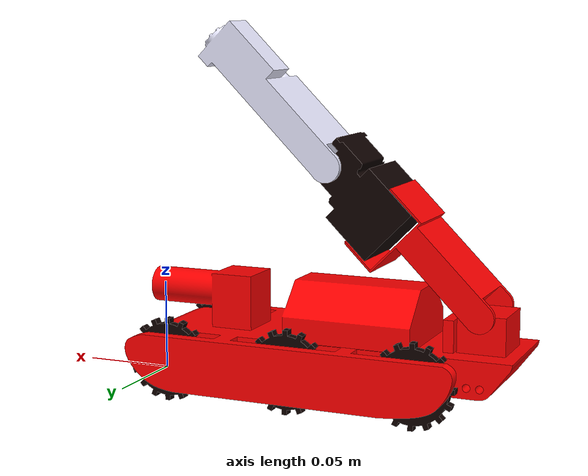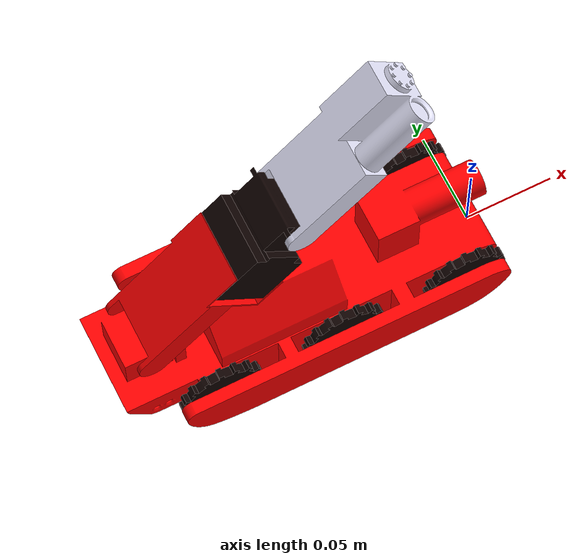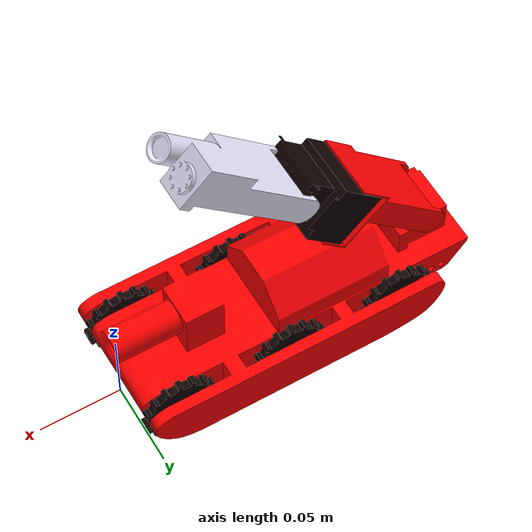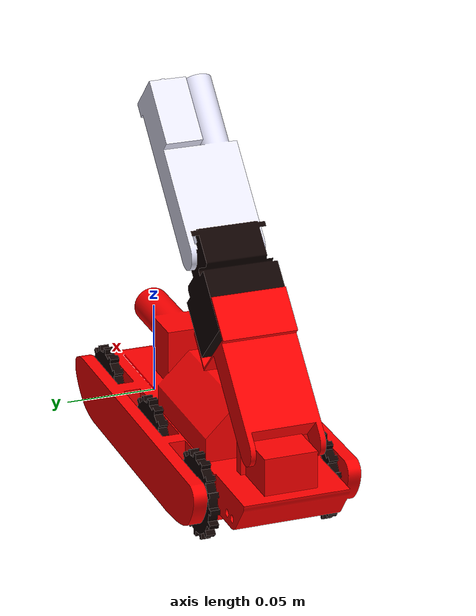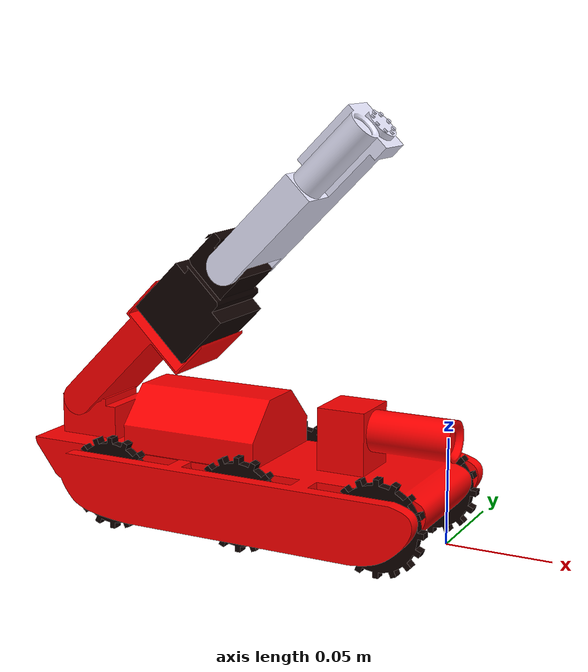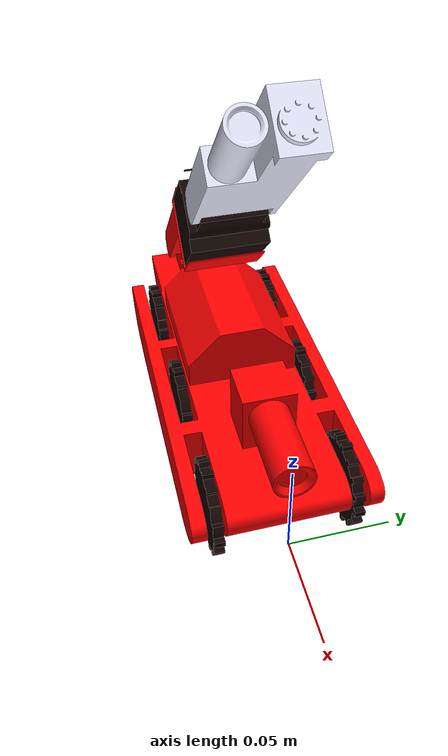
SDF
<sdf version='1.9'>
  <model name='scorpion'>
    <link name='base_link'>
      <inertial>
        <pose>-0.08999998419427797 5.333881995895085e-05 0 0 0 0</pose>
        <mass>4</mass>
        <inertia>
          <ixx>0.01019999876502858</ixx>
          <ixy>4.8004910330498377e-06</ixy>
          <ixz>0</ixz>
          <iyy>0.018299989834971431</iyy>
          <iyz>0</iyz>
          <izz>0.013499994600000001</izz>
        </inertia>
      </inertial>
      <collision name='base_link_fixed_joint_lump__chassis_link_collision'>
        <pose>-0.08999998419427796 5.333881995895085e-05 0.03 0 0 3.141</pose>
        <geometry>
          <box>
            <size>0.18 0.09 0.03</size>
          </box>
        </geometry>
      </collision>
      <visual name='base_link_fixed_joint_lump__chassis_link_visual'>
        <pose>0 0 0 0 0 3.141</pose>
        <geometry>
          <mesh>
            <scale>1 1 1</scale>
            <uri>file:///workspace/install/scorpion/share/scorpion/worlds_and_models/scorpion/meshes/Unnamed_chassis_body.dae</uri>
          </mesh>
        </geometry>
        <material>
          <diffuse>1 0 0 1</diffuse>
          <ambient>1 0 0 1</ambient>
        </material>
      </visual>
      <sensor name='realsense_d435' type='rgbd_camera'>
        <topic>realsense</topic>
        <update_rate>5</update_rate>
        <camera name='depth_camera'>
          <horizontal_fov>1.3999999999999999</horizontal_fov>
          <image>
            <width>640</width>
            <height>480</height>
            <format>R8G8B8</format>
          </image>
          <clip>
            <near>0.01</near>
            <far>5</far>
          </clip>
          <depth_camera>
            <clip>
              <near>0.10000000000000001</near>
              <far>5</far>
            </clip>
            <output>depths</output>
          </depth_camera>
          <noise>
            <type>gaussian</type>
            <mean>0</mean>
            <stddev>0.0070000000000000001</stddev>
          </noise>
        </camera>
        <pose>0 0 0.1 0 -0 -0.00118531</pose>
        <ignition_frame_id>chassis_camera_optical_link</ignition_frame_id>
      </sensor>
    </link>
    <joint name='joint_1' type='revolute'>
      <pose relative_to='base_link'>-0.1899999666323646 0.0001126041754688962 0.05 3.833233541708435e-20 0.7853981633974482 3.141</pose>
      <parent>base_link</parent>
      <child>tail_link1</child>
      <axis>
        <xyz>0 -1 0</xyz>
        <limit>
          <lower>-3.1415926535897931</lower>
          <upper>3.1400000000000001</upper>
          <effort>10</effort>
          <velocity>10</velocity>
        </limit>
        <dynamics>
          <spring_reference>0</spring_reference>
          <spring_stiffness>0</spring_stiffness>
        </dynamics>
      </axis>
    </joint>
    <link name='tail_link1'>
      <pose relative_to='joint_1'>0 0 0 0 0 0</pose>
      <inertial>
        <pose>-0.04 0 0 0 0 0</pose>
        <mass>0.80000000000000004</mass>
        <inertia>
          <ixx>0.00012166661799999999</ixx>
          <ixy>0</ixy>
          <ixz>0</ixz>
          <iyy>0.00049666646800000007</iyy>
          <iyz>0</iyz>
          <izz>0.00058833309800000006</izz>
        </inertia>
      </inertial>
      <collision name='tail_link1_collision'>
        <pose>-0.042 0 0 0 0 0</pose>
        <geometry>
          <box>
            <size>0.085 0.04 0.015</size>
          </box>
        </geometry>
      </collision>
      <visual name='tail_link1_visual'>
        <pose>0 0 0 0 0 0</pose>
        <geometry>
          <mesh>
            <scale>1 1 1</scale>
            <uri>file:///workspace/install/scorpion/share/scorpion/worlds_and_models/scorpion/meshes/Unnamed_tail1_body.dae</uri>
          </mesh>
        </geometry>
        <material>
          <diffuse>1 0 0 1</diffuse>
          <ambient>1 0 0 1</ambient>
        </material>
      </visual>
    </link>
    <joint name='joint_2' type='revolute'>
      <pose relative_to='tail_link1'>-0.065 0 -0.008 0 0 0</pose>
      <parent>tail_link1</parent>
      <child>tail_link2</child>
      <axis>
        <xyz>0 0 1</xyz>
        <limit>
          <lower>-1.570796326794897</lower>
          <upper>1.570796326794897</upper>
          <effort>10</effort>
          <velocity>1</velocity>
        </limit>
        <dynamics>
          <spring_reference>0</spring_reference>
          <spring_stiffness>0</spring_stiffness>
        </dynamics>
      </axis>
    </joint>
    <link name='tail_link2'>
      <pose relative_to='joint_2'>0 0 0 0 0 0</pose>
      <inertial>
        <pose>-0.025 0 0 0 0 0</pose>
        <mass>0.20000000000000001</mass>
        <inertia>
          <ixx>4.8749980500000002e-05</ixx>
          <ixy>0</ixy>
          <ixz>0</ixz>
          <iyy>7.5416636500000002e-05</iyy>
          <iyz>0</iyz>
          <izz>5.6666643999999998e-05</izz>
        </inertia>
      </inertial>
      <collision name='tail_link2_collision'>
        <pose>-0.025 0 0 0 0 0</pose>
        <geometry>
          <box>
            <size>0.05 0.03 0.04</size>
          </box>
        </geometry>
      </collision>
      <visual name='tail_link2_visual'>
        <pose>0 0 0 0 0 0</pose>
        <geometry>
          <mesh>
            <scale>1 1 1</scale>
            <uri>file:///workspace/install/scorpion/share/scorpion/worlds_and_models/scorpion/meshes/Unnamed_tail2_body.dae</uri>
          </mesh>
        </geometry>
        <material>
          <diffuse>0.05375 0.005 0 1</diffuse>
          <ambient>0.05375 0.005 0 1</ambient>
        </material>
      </visual>
    </link>
    <joint name='joint_3' type='revolute'>
      <pose relative_to='tail_link2'>-0.046 0 0 0 0 0</pose>
      <parent>tail_link2</parent>
      <child>tail_link3</child>
      <axis>
        <xyz>0 -1 0</xyz>
        <limit>
          <lower>-1.570796326794897</lower>
          <upper>1.570796326794897</upper>
          <effort>10</effort>
          <velocity>1</velocity>
        </limit>
        <dynamics>
          <spring_reference>0</spring_reference>
          <spring_stiffness>0</spring_stiffness>
        </dynamics>
      </axis>
    </joint>
    <link name='tail_link3'>
      <pose relative_to='joint_3'>0 0 0 0 0 0</pose>
      <inertial>
        <pose>-0.05 0 0 0 0 0</pose>
        <mass>0.40000000000000002</mass>
        <inertia>
          <ixx>0.00011803328612000001</ixx>
          <ixy>0</ixy>
          <ixz>0</ixz>
          <iyy>0.00043053316112000008</iyy>
          <iyz>0</iyz>
          <izz>0.00035416652500000012</izz>
        </inertia>
      </inertial>
      <collision name='tail_link3_collision'>
        <pose>-0.05 0 0 1.57 0 0</pose>
        <geometry>
          <box>
            <size>0.1 0.025 0.054</size>
          </box>
        </geometry>
      </collision>
      <visual name='tail_link3_visual'>
        <pose>0 0 0 0 0 0</pose>
        <geometry>
          <mesh>
            <scale>1 1 1</scale>
            <uri>file:///workspace/install/scorpion/share/scorpion/worlds_and_models/scorpion/meshes/Unnamed_tail3_body.dae</uri>
          </mesh>
        </geometry>
        <material>
          <diffuse>0.9125 0.9125 1 1</diffuse>
          <ambient>0.9125 0.9125 1 1</ambient>
        </material>
      </visual>
      <sensor name='tailcamera' type='camera'>
        <topic>tail_camera</topic>
        <update_rate>5</update_rate>
        <camera>
          <horizontal_fov>1.0469999999999999</horizontal_fov>
          <image>
            <width>320</width>
            <height>240</height>
          </image>
          <clip>
            <near>0.10000000000000001</near>
            <far>20</far>
          </clip>
        </camera>
        <always_on>true</always_on>
        <update_rate>5</update_rate>
        <visualize>true</visualize>
        <pose>-0.25 0 0 0 -0 3.141</pose>
        <ignition_frame_id>tail_camera_link</ignition_frame_id>
      </sensor>
    </link>
    <joint name='left_wheel_joint_1' type='revolute'>
      <pose relative_to='base_link'>-0.01998043892029905 0.03301184727567059 0.015 0 0 3.141</pose>
      <parent>base_link</parent>
      <child>left_wheel_1</child>
      <axis>
        <xyz>0 -1 0</xyz>
        <limit>
          <effort>10</effort>
          <velocity>1</velocity>
          <lower>-10000000000000000</lower>
          <upper>10000000000000000</upper>
        </limit>
        <dynamics>
          <spring_reference>0</spring_reference>
          <spring_stiffness>0</spring_stiffness>
        </dynamics>
      </axis>
    </joint>
    <link name='left_wheel_1'>
      <pose relative_to='left_wheel_joint_1'>0 0 0 0 0 0</pose>
      <inertial>
        <pose>0 0 0 1.57 0 0</pose>
        <mass>0.00050000000000000001</mass>
        <inertia>
          <ixx>1.354166125e-08</ixx>
          <ixy>0</ixy>
          <ixz>0</ixz>
          <iyy>1.354166125e-08</iyy>
          <iyz>0</iyz>
          <izz>2.4999999999999999e-08</izz>
        </inertia>
      </inertial>
      <collision name='left_wheel_1_collision'>
        <pose>0 0 0 1.57 0 0</pose>
        <geometry>
          <cylinder>
            <length>0.02</length>
            <radius>0.02</radius>
          </cylinder>
        </geometry>
        <surface>
          <friction>
            <ode>
              <mu>0.5</mu>
              <mu2>1</mu2>
              <fdir1>0 0 1</fdir1>
              <mu1>0.5</mu1>
            </ode>
          </friction>
          <contact>
            <ode/>
          </contact>
        </surface>
      </collision>
      <visual name='left_wheel_1_visual'>
        <pose>0 0 0 0 0 0</pose>
        <geometry>
          <mesh>
            <scale>1 1 1</scale>
            <uri>file:///workspace/install/scorpion/share/scorpion/worlds_and_models/scorpion/meshes/Unnamed_wheel_body.dae</uri>
          </mesh>
        </geometry>
        <material>
          <diffuse>0.05375 0.005 0 1</diffuse>
          <ambient>0.05375 0.005 0 1</ambient>
        </material>
      </visual>
    </link>
    <joint name='left_wheel_joint_2' type='revolute'>
      <pose relative_to='base_link'>-0.08998042662695968 0.03305333302452755 0.015 0 0 3.141</pose>
      <parent>base_link</parent>
      <child>left_wheel_2</child>
      <axis>
        <xyz>0 -1 0</xyz>
        <limit>
          <effort>10</effort>
          <velocity>1</velocity>
          <lower>-10000000000000000</lower>
          <upper>10000000000000000</upper>
        </limit>
        <dynamics>
          <spring_reference>0</spring_reference>
          <spring_stiffness>0</spring_stiffness>
        </dynamics>
      </axis>
    </joint>
    <link name='left_wheel_2'>
      <pose relative_to='left_wheel_joint_2'>0 0 0 0 0 0</pose>
      <inertial>
        <pose>0 0 0 1.57 0 0</pose>
        <mass>0.00050000000000000001</mass>
        <inertia>
          <ixx>1.354166125e-08</ixx>
          <ixy>0</ixy>
          <ixz>0</ixz>
          <iyy>1.354166125e-08</iyy>
          <iyz>0</iyz>
          <izz>2.4999999999999999e-08</izz>
        </inertia>
      </inertial>
      <collision name='left_wheel_2_collision'>
        <pose>0 0 0 1.57 0 0</pose>
        <geometry>
          <cylinder>
            <length>0.02</length>
            <radius>0.02</radius>
          </cylinder>
        </geometry>
        <surface>
          <friction>
            <ode>
              <mu>0.5</mu>
              <mu2>1</mu2>
              <fdir1>0 0 1</fdir1>
              <mu1>0.5</mu1>
            </ode>
          </friction>
          <contact>
            <ode/>
          </contact>
        </surface>
      </collision>
      <visual name='left_wheel_2_visual'>
        <pose>0 0 0 0 0 0</pose>
        <geometry>
          <mesh>
            <scale>1 1 1</scale>
            <uri>file:///workspace/install/scorpion/share/scorpion/worlds_and_models/scorpion/meshes/Unnamed_wheel_body.dae</uri>
          </mesh>
        </geometry>
        <material>
          <diffuse>0.05375 0.005 0 1</diffuse>
          <ambient>0.05375 0.005 0 1</ambient>
        </material>
      </visual>
    </link>
    <joint name='left_wheel_joint_3' type='revolute'>
      <pose relative_to='base_link'>-0.1599804143336204 0.03309481877338451 0.015 0 0 3.141</pose>
      <parent>base_link</parent>
      <child>left_wheel_3</child>
      <axis>
        <xyz>0 -1 0</xyz>
        <limit>
          <effort>10</effort>
          <velocity>1</velocity>
          <lower>-10000000000000000</lower>
          <upper>10000000000000000</upper>
        </limit>
        <dynamics>
          <spring_reference>0</spring_reference>
          <spring_stiffness>0</spring_stiffness>
        </dynamics>
      </axis>
    </joint>
    <link name='left_wheel_3'>
      <pose relative_to='left_wheel_joint_3'>0 0 0 0 0 0</pose>
      <inertial>
        <pose>0 0 0 1.57 0 0</pose>
        <mass>0.00050000000000000001</mass>
        <inertia>
          <ixx>1.354166125e-08</ixx>
          <ixy>0</ixy>
          <ixz>0</ixz>
          <iyy>1.354166125e-08</iyy>
          <iyz>0</iyz>
          <izz>2.4999999999999999e-08</izz>
        </inertia>
      </inertial>
      <collision name='left_wheel_3_collision'>
        <pose>0 0 0 1.57 0 0</pose>
        <geometry>
          <cylinder>
            <length>0.02</length>
            <radius>0.02</radius>
          </cylinder>
        </geometry>
        <surface>
          <friction>
            <ode>
              <mu>0.5</mu>
              <mu2>1</mu2>
              <fdir1>0 0 1</fdir1>
              <mu1>0.5</mu1>
            </ode>
          </friction>
          <contact>
            <ode/>
          </contact>
        </surface>
      </collision>
      <visual name='left_wheel_3_visual'>
        <pose>0 0 0 0 0 0</pose>
        <geometry>
          <mesh>
            <scale>1 1 1</scale>
            <uri>file:///workspace/install/scorpion/share/scorpion/worlds_and_models/scorpion/meshes/Unnamed_wheel_body.dae</uri>
          </mesh>
        </geometry>
        <material>
          <diffuse>0.05375 0.005 0 1</diffuse>
          <ambient>0.05375 0.005 0 1</ambient>
        </material>
      </visual>
    </link>
    <joint name='right_wheel_joint_1' type='revolute'>
      <pose relative_to='base_link'>-0.02001955405493561 -0.03298814113346661 0.015 0 0 3.141</pose>
      <parent>base_link</parent>
      <child>right_wheel_1</child>
      <axis>
        <xyz>0 -1 0</xyz>
        <limit>
          <effort>10</effort>
          <velocity>1</velocity>
          <lower>-10000000000000000</lower>
          <upper>10000000000000000</upper>
        </limit>
        <dynamics>
          <spring_reference>0</spring_reference>
          <spring_stiffness>0</spring_stiffness>
        </dynamics>
      </axis>
    </joint>
    <link name='right_wheel_1'>
      <pose relative_to='right_wheel_joint_1'>0 0 0 0 0 0</pose>
      <inertial>
        <pose>0 0 0 1.57 0 0</pose>
        <mass>0.00050000000000000001</mass>
        <inertia>
          <ixx>1.354166125e-08</ixx>
          <ixy>0</ixy>
          <ixz>0</ixz>
          <iyy>1.354166125e-08</iyy>
          <iyz>0</iyz>
          <izz>2.4999999999999999e-08</izz>
        </inertia>
      </inertial>
      <collision name='right_wheel_1_collision'>
        <pose>0 0 0 1.57 0 0</pose>
        <geometry>
          <cylinder>
            <length>0.02</length>
            <radius>0.02</radius>
          </cylinder>
        </geometry>
        <surface>
          <friction>
            <ode>
              <mu>0.5</mu>
              <mu2>1</mu2>
              <fdir1>0 0 1</fdir1>
              <mu1>0.5</mu1>
            </ode>
          </friction>
          <contact>
            <ode/>
          </contact>
        </surface>
      </collision>
      <visual name='right_wheel_1_visual'>
        <pose>0 0 0 0 0 0</pose>
        <geometry>
          <mesh>
            <scale>1 1 1</scale>
            <uri>file:///workspace/install/scorpion/share/scorpion/worlds_and_models/scorpion/meshes/Unnamed_wheel_body.dae</uri>
          </mesh>
        </geometry>
        <material>
          <diffuse>0.05375 0.005 0 1</diffuse>
          <ambient>0.05375 0.005 0 1</ambient>
        </material>
      </visual>
    </link>
    <joint name='right_wheel_joint_2' type='revolute'>
      <pose relative_to='base_link'>-0.09001954176159624 -0.03294665538460965 0.015 0 0 3.141</pose>
      <parent>base_link</parent>
      <child>right_wheel_2</child>
      <axis>
        <xyz>0 -1 0</xyz>
        <limit>
          <effort>10</effort>
          <velocity>1</velocity>
          <lower>-10000000000000000</lower>
          <upper>10000000000000000</upper>
        </limit>
        <dynamics>
          <spring_reference>0</spring_reference>
          <spring_stiffness>0</spring_stiffness>
        </dynamics>
      </axis>
    </joint>
    <link name='right_wheel_2'>
      <pose relative_to='right_wheel_joint_2'>0 0 0 0 0 0</pose>
      <inertial>
        <pose>0 0 0 1.57 0 0</pose>
        <mass>0.00050000000000000001</mass>
        <inertia>
          <ixx>1.354166125e-08</ixx>
          <ixy>0</ixy>
          <ixz>0</ixz>
          <iyy>1.354166125e-08</iyy>
          <iyz>0</iyz>
          <izz>2.4999999999999999e-08</izz>
        </inertia>
      </inertial>
      <collision name='right_wheel_2_collision'>
        <pose>0 0 0 1.57 0 0</pose>
        <geometry>
          <cylinder>
            <length>0.02</length>
            <radius>0.02</radius>
          </cylinder>
        </geometry>
        <surface>
          <friction>
            <ode>
              <mu>0.5</mu>
              <mu2>1</mu2>
              <fdir1>0 0 1</fdir1>
              <mu1>0.5</mu1>
            </ode>
          </friction>
          <contact>
            <ode/>
          </contact>
        </surface>
      </collision>
      <visual name='right_wheel_2_visual'>
        <pose>0 0 0 0 0 0</pose>
        <geometry>
          <mesh>
            <scale>1 1 1</scale>
            <uri>file:///workspace/install/scorpion/share/scorpion/worlds_and_models/scorpion/meshes/Unnamed_wheel_body.dae</uri>
          </mesh>
        </geometry>
        <material>
          <diffuse>0.05375 0.005 0 1</diffuse>
          <ambient>0.05375 0.005 0 1</ambient>
        </material>
      </visual>
    </link>
    <joint name='right_wheel_joint_3' type='revolute'>
      <pose relative_to='base_link'>-0.1600195294682569 -0.03290516963575269 0.015 0 0 3.141</pose>
      <parent>base_link</parent>
      <child>right_wheel_3</child>
      <axis>
        <xyz>0 -1 0</xyz>
        <limit>
          <effort>10</effort>
          <velocity>1</velocity>
          <lower>-10000000000000000</lower>
          <upper>10000000000000000</upper>
        </limit>
        <dynamics>
          <spring_reference>0</spring_reference>
          <spring_stiffness>0</spring_stiffness>
        </dynamics>
      </axis>
    </joint>
    <link name='right_wheel_3'>
      <pose relative_to='right_wheel_joint_3'>0 0 0 0 0 0</pose>
      <inertial>
        <pose>0 0 0 1.57 0 0</pose>
        <mass>0.00050000000000000001</mass>
        <inertia>
          <ixx>1.354166125e-08</ixx>
          <ixy>0</ixy>
          <ixz>0</ixz>
          <iyy>1.354166125e-08</iyy>
          <iyz>0</iyz>
          <izz>2.4999999999999999e-08</izz>
        </inertia>
      </inertial>
      <collision name='right_wheel_3_collision'>
        <pose>0 0 0 1.57 0 0</pose>
        <geometry>
          <cylinder>
            <length>0.02</length>
            <radius>0.02</radius>
          </cylinder>
        </geometry>
        <surface>
          <friction>
            <ode>
              <mu>0.5</mu>
              <mu2>1</mu2>
              <fdir1>0 0 1</fdir1>
              <mu1>0.5</mu1>
            </ode>
          </friction>
          <contact>
            <ode/>
          </contact>
        </surface>
      </collision>
      <visual name='right_wheel_3_visual'>
        <pose>0 0 0 0 0 0</pose>
        <geometry>
          <mesh>
            <scale>1 1 1</scale>
            <uri>file:///workspace/install/scorpion/share/scorpion/worlds_and_models/scorpion/meshes/Unnamed_wheel_body.dae</uri>
          </mesh>
        </geometry>
        <material>
          <diffuse>0.05375 0.005 0 1</diffuse>
          <ambient>0.05375 0.005 0 1</ambient>
        </material>
      </visual>
    </link>
    <plugin name='ign_ros2_control::IgnitionROS2ControlPlugin' filename='ign_ros2_control-system'>
      <ros>
        <remapping>/diff_drive_base_controller/odom:=odom</remapping>
        <remapping>/diff_drive_base_controller/tf_odometry:=tf</remapping>
        <remapping>/diff_drive_base_controller/cmd_vel_unstamped:=cmd_vel</remapping>
      </ros>
      <parameters>/workspace/install/scorpion/share/scorpion/config/diffdrive_control.yaml</parameters>
    </plugin>
    <plugin name='ignition::gazebo::systems::Sensors' filename='ignition-gazebo-sensors-system'>
      <render_engine>ogre2</render_engine>
    </plugin>
    <frame name='chassis_camera_joint' attached_to='chassis_link'>
      <pose>0 0 0.1 0 -0 3.141</pose>
    </frame>
    <frame name='chassis_camera_link' attached_to='chassis_camera_joint'/>
    <frame name='chasis_link_joint' attached_to='base_link'>
      <pose>0 0 0 0 -0 3.141</pose>
    </frame>
    <frame name='chassis_link' attached_to='chasis_link_joint'/>
    <frame name='tail_camera_joint' attached_to='tail_link3'>
      <pose>-0.25 0 0 0 -0 3.141</pose>
    </frame>
    <frame name='tail_camera_link' attached_to='tail_camera_joint'/>
  </model>
</sdf>
